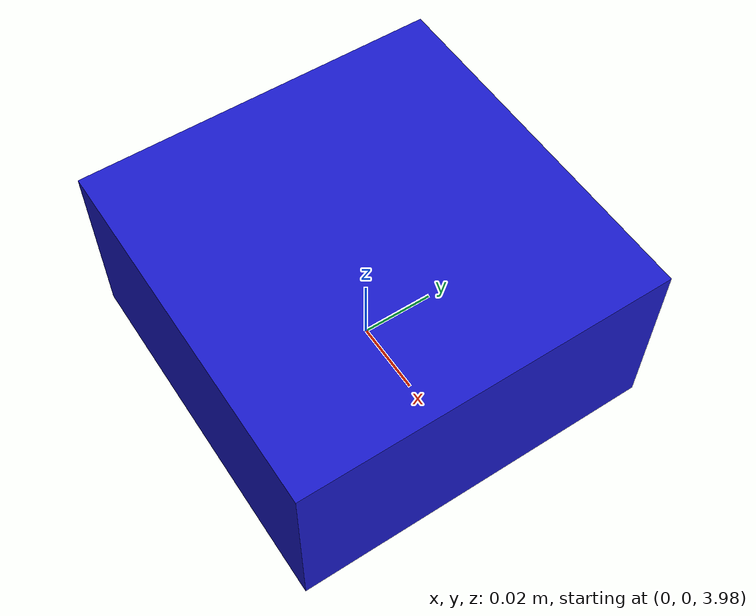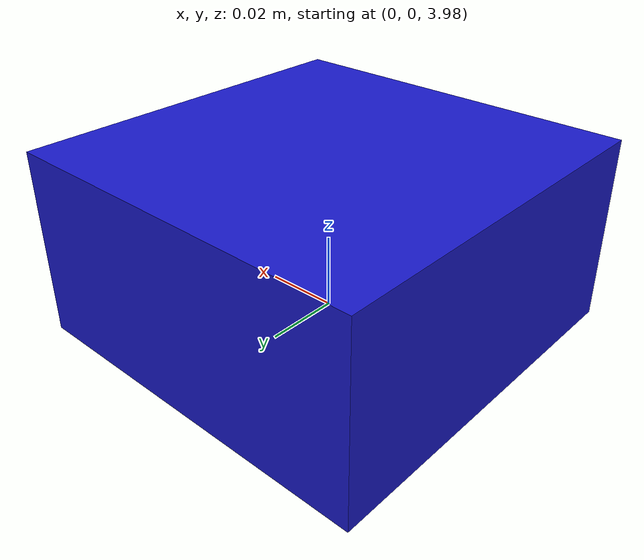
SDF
<?xml version="1.0"?>
<sdf version="1.6">
  <model name="virtual_drone_cam">
    <!-- Keep the model dynamic but disable gravity so it doesn't fall -->
    <static>false</static>
    <pose>0 0 4 0 0 0</pose>

    <link name="base_link">
      <!-- Disable gravity so the camera doesn't fall out of the sky -->
      <gravity>0</gravity>
      <inertial>
        <mass>0.1</mass>
        <inertia>
          <ixx>0.001</ixx>
          <iyy>0.001</iyy>
          <izz>0.001</izz>
          <ixy>0</ixy>
          <ixz>0</ixz>
          <iyz>0</iyz>
        </inertia>
      </inertial>

      <visual name="visual">
        <geometry>
          <box>
            <size>0.1 0.1 0.05</size>
          </box>
        </geometry>
        <material>
          <diffuse>0.1 0.1 0.8 1</diffuse>
          <ambient>0.1 0.1 0.8 1</ambient>
        </material>
      </visual>

        <sensor name="front_camera" type="camera">
        <pose>0.06 0 0 0 0 0</pose>
        <always_on>true</always_on>
        <update_rate>30</update_rate>
        <camera>
          <horizontal_fov>1.45</horizontal_fov>
          <image>
            <width>520</width>
            <height>240</height>
            <format>R8G8B8</format>
          </image>
          <clip>
            <near>0.05</near>
            <far>100</far>
          </clip>
          <distortion>
            <k1>-0.25</k1>
            <k2>0.12</k2>
            <k3>0.0</k3>
            <p1>0.0</p1>
            <p2>0.0</p2>
            <center>0.59 0.5</center>
          </distortion>
        </camera>
        <plugin name="camera_controller" filename="libgazebo_ros_camera.so">
          <ros>
            <namespace>/</namespace>
            <remapping>image_raw:=front_camera/image_raw</remapping>
            <remapping>camera_info:=front_camera/camera_info</remapping>
          </ros>
          <camera_name>front_camera</camera_name>
          <frame_name>base_link</frame_name>
        </plugin>
      </sensor>
    </link>
  </model>
</sdf>
